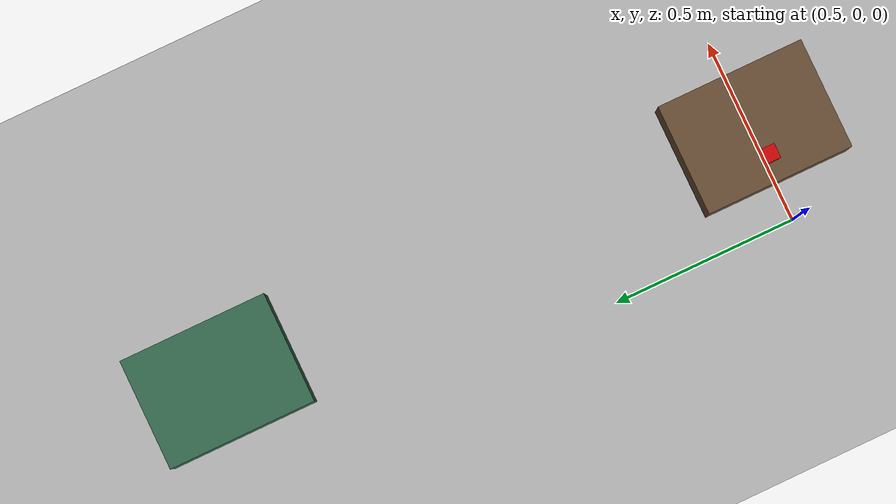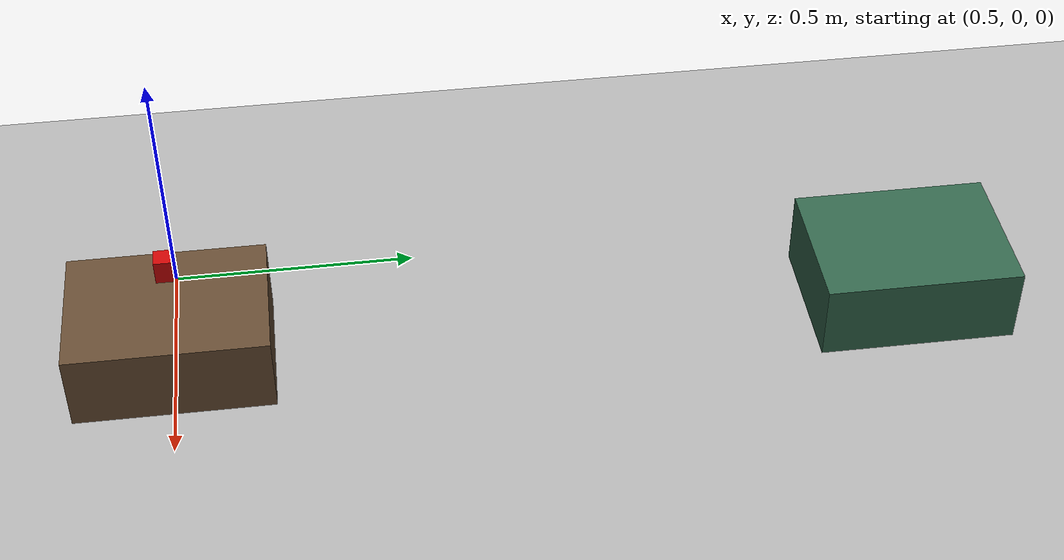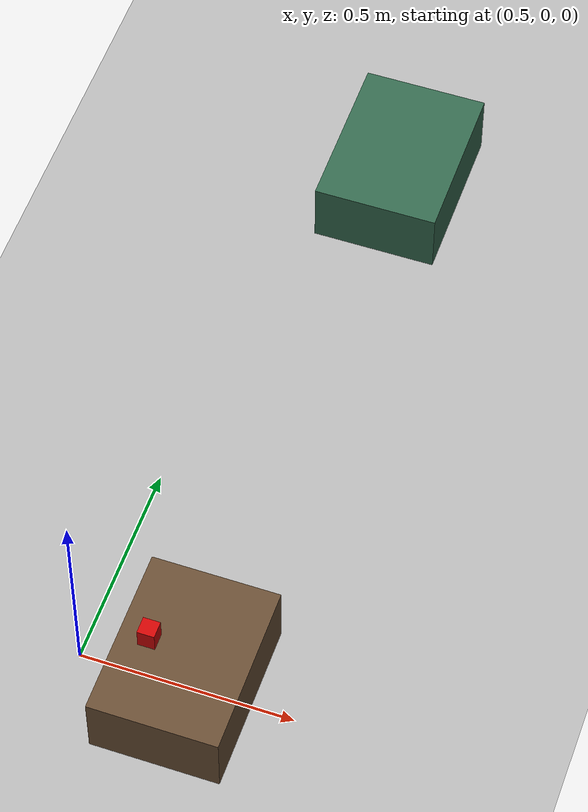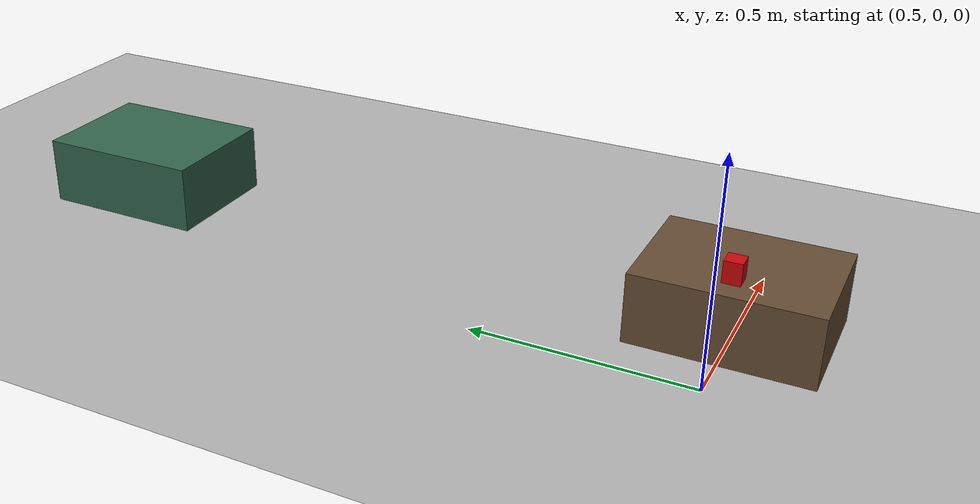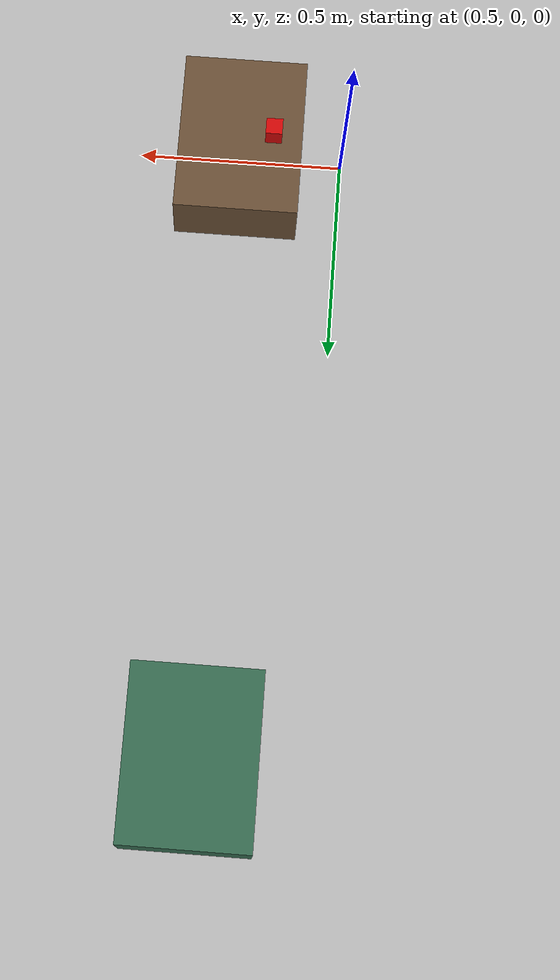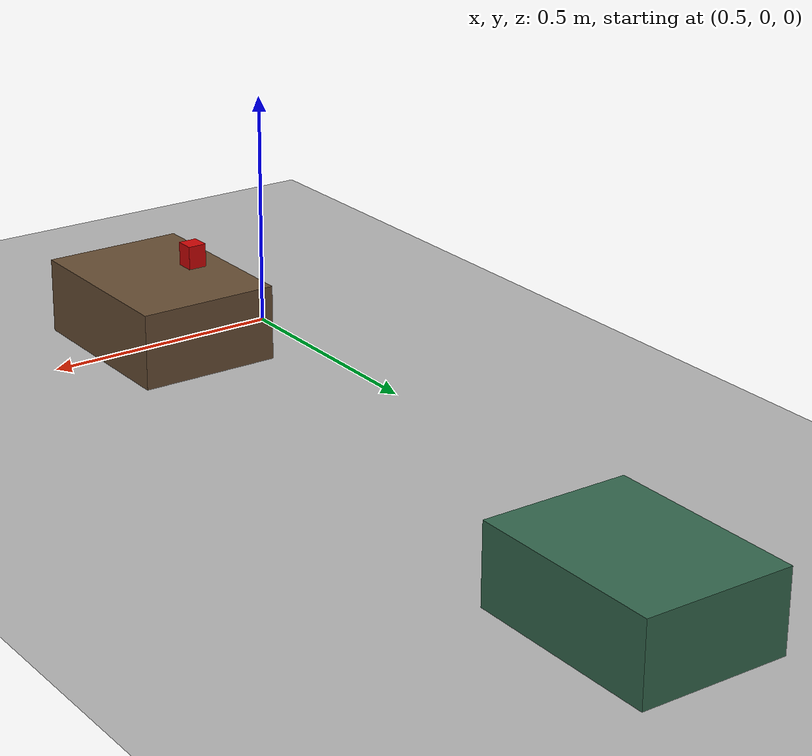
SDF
<?xml version="1.0"?>
<sdf version="1.6"><world name="sorting">
  <plugin name="state" filename="libgazebo_ros_state.so"><ros><namespace>/gazebo</namespace></ros><update_rate>20</update_rate></plugin>
  <gui><camera name="user_camera"><pose>2 -2.5 1.8 0 0.5 2.1</pose><view_controller>orbit</view_controller></camera></gui>
  <physics type="ode" name="physics"><max_step_size>0.001</max_step_size><real_time_update_rate>1000</real_time_update_rate></physics>
  <light name="sun" type="directional"><pose>0 0 10 0 0 0</pose><diffuse>0.8 0.8 0.8 1</diffuse><direction>-0.5 0.1 -0.9</direction></light>
  <model name="ground"><static>true</static><link name="ground">
    <collision name="ground"><geometry><plane><normal>0 0 1</normal><size>20 20</size></plane></geometry></collision>
    <visual name="ground"><geometry><plane><normal>0 0 1</normal><size>20 20</size></plane></geometry><material><ambient>0.7 0.7 0.7 1</ambient></material></visual>
  </link></model>
  <model name="pick_table"><static>true</static><pose>0.75 0 0.08 0 0 0</pose><link name="table">
    <collision name="table"><geometry><box><size>0.30 0.40 0.16</size></box></geometry></collision>
    <visual name="table"><geometry><box><size>0.30 0.40 0.16</size></box></geometry><material><ambient>0.4 0.3 0.2 1</ambient></material></visual>
  </link></model>
  <model name="place_table"><static>true</static><pose>0.75 1.5 0.08 0 0 0</pose><link name="table">
    <collision name="table"><geometry><box><size>0.30 0.40 0.16</size></box></geometry></collision>
    <visual name="table"><geometry><box><size>0.30 0.40 0.16</size></box></geometry><material><ambient>0.2 0.4 0.3 1</ambient></material></visual>
  </link></model>
  <model name="box"><pose>0.67 0 0.185 0 0 0</pose><link name="box">
    <inertial><mass>0.05</mass><inertia><ixx>0.00002</ixx><iyy>0.00002</iyy><izz>0.00002</izz></inertia></inertial>
    <collision name="box"><geometry><box><size>0.04 0.04 0.05</size></box></geometry></collision>
    <visual name="box"><geometry><box><size>0.04 0.04 0.05</size></box></geometry><material><ambient>0.4 0.02 0.02 1</ambient><diffuse>0.8 0.02 0.02 1</diffuse><specular>0 0 0 1</specular></material></visual>
  </link></model>
<model name="overhead_camera"><static>true</static><pose>0.75 0 1 0 1.57079632679 0</pose><link name="camera">
 <sensor name="rgbd" type="depth"><always_on>true</always_on><update_rate>5</update_rate><visualize>false</visualize>
 <camera><horizontal_fov>1.047</horizontal_fov><image><width>320</width><height>240</height><format>R8G8B8</format></image><clip><near>0.05</near><far>3</far></clip></camera>
 <plugin name="rgbd" filename="libgazebo_ros_camera.so"><ros><namespace>/camera</namespace></ros><camera_name>camera</camera_name><frame_name>camera_optical_frame</frame_name></plugin></sensor>
 </link></model>
</world></sdf>
